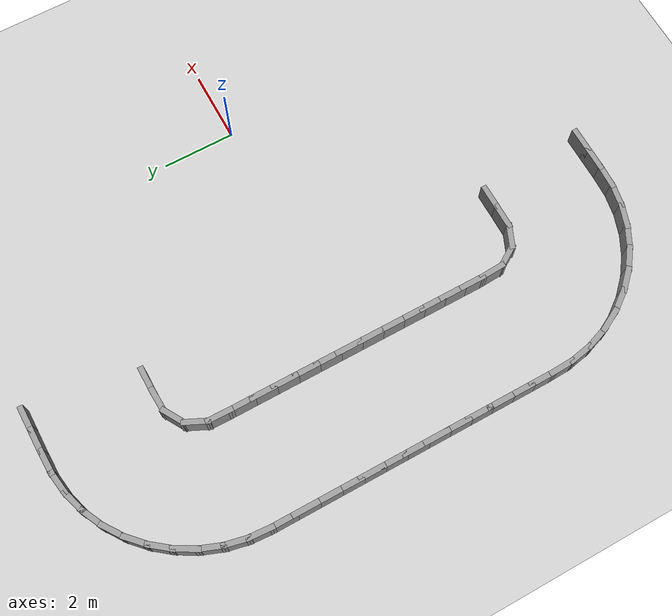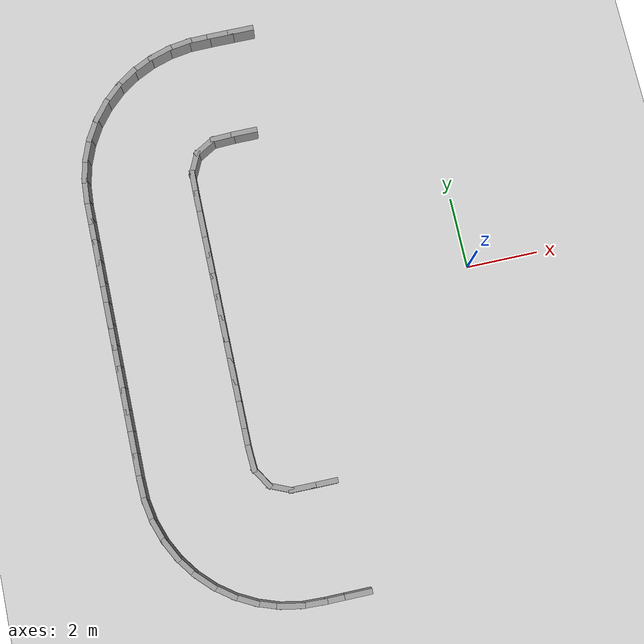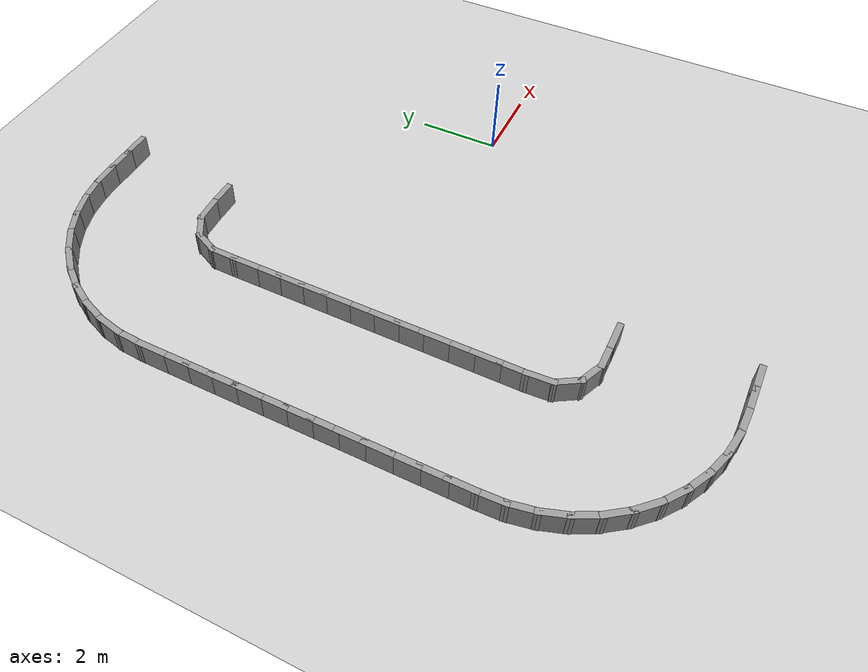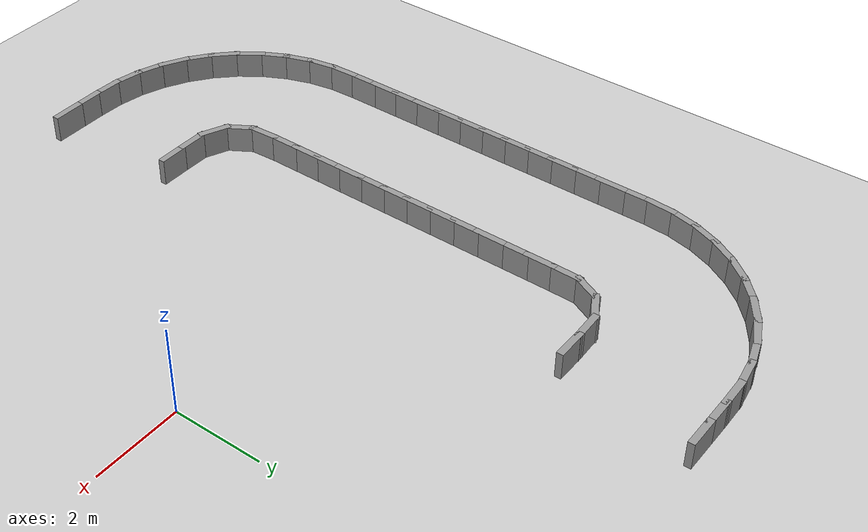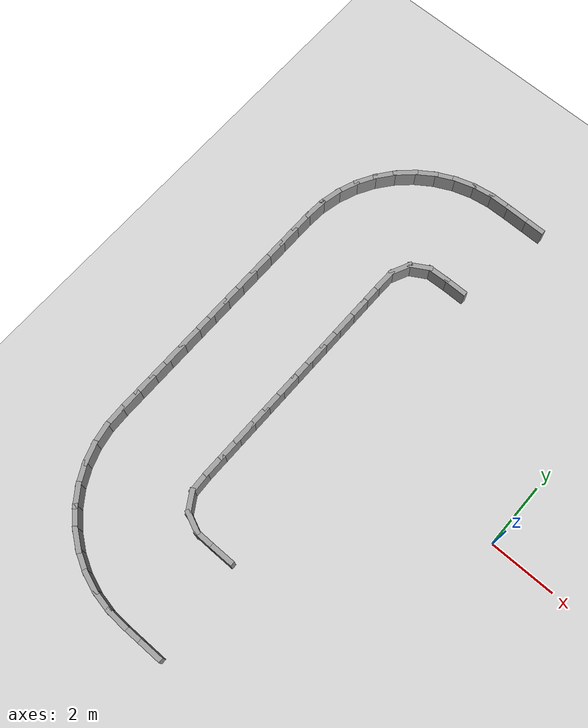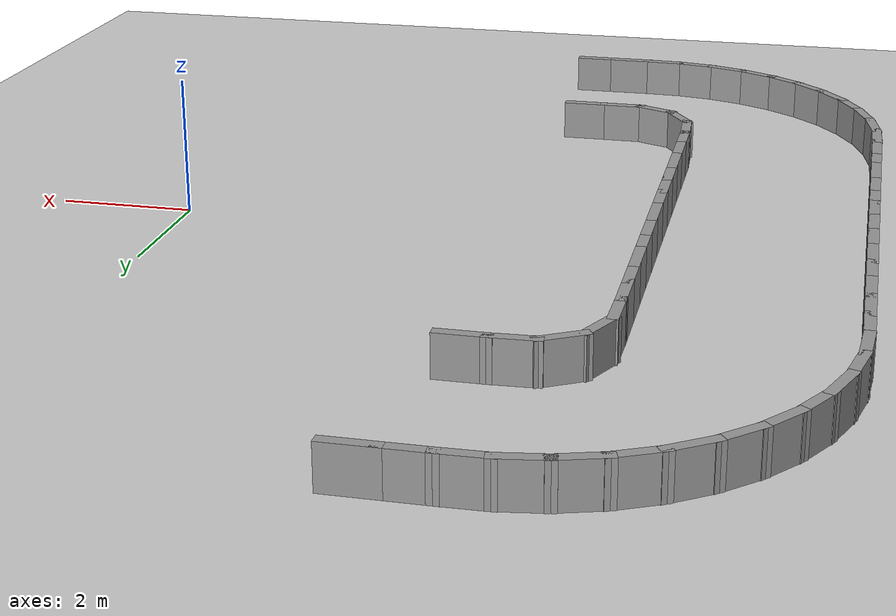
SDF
<sdf version="1.7">
 <world name="default">
  <model name="ground_plane">
   <static>1</static>
   <link name="link">
    <collision name="collision">
     <geometry><plane><normal>0 0 1</normal><size>100 100</size></plane></geometry>
     <surface><friction><ode><mu>100</mu><mu2>50</mu2></ode></friction></surface>
    </collision>
    <visual name="visual">
     <cast_shadows>0</cast_shadows>
     <geometry><plane><normal>0 0 1</normal><size>100 100</size></plane></geometry>
     <material>
      <script><uri>file://media/materials/scripts/gazebo.material</uri><name>Gazebo/Grey</name></script>
     </material>
    </visual>
   </link>
  </model>
  <model name="parking_lot_loop">
   <link name="Wall_21">
    <collision name="Wall_21_Collision">
     <geometry><box><size>0.7500 0.1500 0.6000</size></box></geometry>
     <pose>0 0 0.3000 0 -0 0</pose>
    </collision>
    <visual name="Wall_21_Visual">
     <pose>0 0 0.3000 0 -0 0</pose>
     <geometry><box><size>0.7500 0.1500 0.6000</size></box></geometry>
     <material>
      <script><uri>file://media/materials/scripts/gazebo.material</uri><name>Gazebo/Grey</name></script>
      <ambient>1 1 1 1</ambient>
     </material>
    </visual>
    <pose>-5.3292 5.0000 0 0 -0 3.14159</pose>
   </link>
   <link name="Wall_22">
    <collision name="Wall_22_Collision">
     <geometry><box><size>0.7486 0.1500 0.6000</size></box></geometry>
     <pose>0 0 0.3000 0 -0 0</pose>
    </collision>
    <visual name="Wall_22_Visual">
     <pose>0 0 0.3000 0 -0 0</pose>
     <geometry><box><size>0.7486 0.1500 0.6000</size></box></geometry>
     <material>
      <script><uri>file://media/materials/scripts/gazebo.material</uri><name>Gazebo/Grey</name></script>
      <ambient>1 1 1 1</ambient>
     </material>
    </visual>
    <pose>-5.9282 4.9869 0 0 -0 -3.09789</pose>
   </link>
   <link name="Wall_23">
    <collision name="Wall_23_Collision">
     <geometry><box><size>0.7410 0.1500 0.6000</size></box></geometry>
     <pose>0 0 0.3000 0 -0 0</pose>
    </collision>
    <visual name="Wall_23_Visual">
     <pose>0 0 0.3000 0 -0 0</pose>
     <geometry><box><size>0.7410 0.1500 0.6000</size></box></geometry>
     <material>
      <script><uri>file://media/materials/scripts/gazebo.material</uri><name>Gazebo/Grey</name></script>
      <ambient>1 1 1 1</ambient>
     </material>
    </visual>
    <pose>-6.4823 4.8247 0 0 -0 -2.61239</pose>
   </link>
   <link name="Wall_24">
    <collision name="Wall_24_Collision">
     <geometry><box><size>0.7410 0.1500 0.6000</size></box></geometry>
     <pose>0 0 0.3000 0 -0 0</pose>
    </collision>
    <visual name="Wall_24_Visual">
     <pose>0 0 0.3000 0 -0 0</pose>
     <geometry><box><size>0.7410 0.1500 0.6000</size></box></geometry>
     <material>
      <script><uri>file://media/materials/scripts/gazebo.material</uri><name>Gazebo/Grey</name></script>
      <ambient>1 1 1 1</ambient>
     </material>
    </visual>
    <pose>-6.8637 4.4083 0 0 -0 -2.01239</pose>
   </link>
   <link name="Wall_25">
    <collision name="Wall_25_Collision">
     <geometry><box><size>0.7496 0.1500 0.6000</size></box></geometry>
     <pose>0 0 0.3000 0 -0 0</pose>
    </collision>
    <visual name="Wall_25_Visual">
     <pose>0 0 0.3000 0 -0 0</pose>
     <geometry><box><size>0.7496 0.1500 0.6000</size></box></geometry>
     <material>
      <script><uri>file://media/materials/scripts/gazebo.material</uri><name>Gazebo/Grey</name></script>
      <ambient>1 1 1 1</ambient>
     </material>
    </visual>
    <pose>-6.9950 3.8414 0 0 -0 -1.58749</pose>
   </link>
   <link name="Wall_26">
    <collision name="Wall_26_Collision">
     <geometry><box><size>0.7500 0.1500 0.6000</size></box></geometry>
     <pose>0 0 0.3000 0 -0 0</pose>
    </collision>
    <visual name="Wall_26_Visual">
     <pose>0 0 0.3000 0 -0 0</pose>
     <geometry><box><size>0.7500 0.1500 0.6000</size></box></geometry>
     <material>
      <script><uri>file://media/materials/scripts/gazebo.material</uri><name>Gazebo/Grey</name></script>
      <ambient>1 1 1 1</ambient>
     </material>
    </visual>
    <pose>-7.0000 3.2416 0 0 -0 -1.57080</pose>
   </link>
   <link name="Wall_27">
    <collision name="Wall_27_Collision">
     <geometry><box><size>0.7500 0.1500 0.6000</size></box></geometry>
     <pose>0 0 0.3000 0 -0 0</pose>
    </collision>
    <visual name="Wall_27_Visual">
     <pose>0 0 0.3000 0 -0 0</pose>
     <geometry><box><size>0.7500 0.1500 0.6000</size></box></geometry>
     <material>
      <script><uri>file://media/materials/scripts/gazebo.material</uri><name>Gazebo/Grey</name></script>
      <ambient>1 1 1 1</ambient>
     </material>
    </visual>
    <pose>-7.0000 2.6416 0 0 -0 -1.57080</pose>
   </link>
   <link name="Wall_28">
    <collision name="Wall_28_Collision">
     <geometry><box><size>0.7500 0.1500 0.6000</size></box></geometry>
     <pose>0 0 0.3000 0 -0 0</pose>
    </collision>
    <visual name="Wall_28_Visual">
     <pose>0 0 0.3000 0 -0 0</pose>
     <geometry><box><size>0.7500 0.1500 0.6000</size></box></geometry>
     <material>
      <script><uri>file://media/materials/scripts/gazebo.material</uri><name>Gazebo/Grey</name></script>
      <ambient>1 1 1 1</ambient>
     </material>
    </visual>
    <pose>-7.0000 2.0416 0 0 -0 -1.57080</pose>
   </link>
   <link name="Wall_29">
    <collision name="Wall_29_Collision">
     <geometry><box><size>0.7500 0.1500 0.6000</size></box></geometry>
     <pose>0 0 0.3000 0 -0 0</pose>
    </collision>
    <visual name="Wall_29_Visual">
     <pose>0 0 0.3000 0 -0 0</pose>
     <geometry><box><size>0.7500 0.1500 0.6000</size></box></geometry>
     <material>
      <script><uri>file://media/materials/scripts/gazebo.material</uri><name>Gazebo/Grey</name></script>
      <ambient>1 1 1 1</ambient>
     </material>
    </visual>
    <pose>-7.0000 1.4416 0 0 -0 -1.57080</pose>
   </link>
   <link name="Wall_30">
    <collision name="Wall_30_Collision">
     <geometry><box><size>0.7500 0.1500 0.6000</size></box></geometry>
     <pose>0 0 0.3000 0 -0 0</pose>
    </collision>
    <visual name="Wall_30_Visual">
     <pose>0 0 0.3000 0 -0 0</pose>
     <geometry><box><size>0.7500 0.1500 0.6000</size></box></geometry>
     <material>
      <script><uri>file://media/materials/scripts/gazebo.material</uri><name>Gazebo/Grey</name></script>
      <ambient>1 1 1 1</ambient>
     </material>
    </visual>
    <pose>-7.0000 0.8416 0 0 -0 -1.57080</pose>
   </link>
   <link name="Wall_31">
    <collision name="Wall_31_Collision">
     <geometry><box><size>0.7500 0.1500 0.6000</size></box></geometry>
     <pose>0 0 0.3000 0 -0 0</pose>
    </collision>
    <visual name="Wall_31_Visual">
     <pose>0 0 0.3000 0 -0 0</pose>
     <geometry><box><size>0.7500 0.1500 0.6000</size></box></geometry>
     <material>
      <script><uri>file://media/materials/scripts/gazebo.material</uri><name>Gazebo/Grey</name></script>
      <ambient>1 1 1 1</ambient>
     </material>
    </visual>
    <pose>-7.0000 0.2416 0 0 -0 -1.57080</pose>
   </link>
   <link name="Wall_32">
    <collision name="Wall_32_Collision">
     <geometry><box><size>0.7500 0.1500 0.6000</size></box></geometry>
     <pose>0 0 0.3000 0 -0 0</pose>
    </collision>
    <visual name="Wall_32_Visual">
     <pose>0 0 0.3000 0 -0 0</pose>
     <geometry><box><size>0.7500 0.1500 0.6000</size></box></geometry>
     <material>
      <script><uri>file://media/materials/scripts/gazebo.material</uri><name>Gazebo/Grey</name></script>
      <ambient>1 1 1 1</ambient>
     </material>
    </visual>
    <pose>-7.0000 -0.3584 0 0 -0 -1.57080</pose>
   </link>
   <link name="Wall_33">
    <collision name="Wall_33_Collision">
     <geometry><box><size>0.7500 0.1500 0.6000</size></box></geometry>
     <pose>0 0 0.3000 0 -0 0</pose>
    </collision>
    <visual name="Wall_33_Visual">
     <pose>0 0 0.3000 0 -0 0</pose>
     <geometry><box><size>0.7500 0.1500 0.6000</size></box></geometry>
     <material>
      <script><uri>file://media/materials/scripts/gazebo.material</uri><name>Gazebo/Grey</name></script>
      <ambient>1 1 1 1</ambient>
     </material>
    </visual>
    <pose>-7.0000 -0.9584 0 0 -0 -1.57080</pose>
   </link>
   <link name="Wall_34">
    <collision name="Wall_34_Collision">
     <geometry><box><size>0.7500 0.1500 0.6000</size></box></geometry>
     <pose>0 0 0.3000 0 -0 0</pose>
    </collision>
    <visual name="Wall_34_Visual">
     <pose>0 0 0.3000 0 -0 0</pose>
     <geometry><box><size>0.7500 0.1500 0.6000</size></box></geometry>
     <material>
      <script><uri>file://media/materials/scripts/gazebo.material</uri><name>Gazebo/Grey</name></script>
      <ambient>1 1 1 1</ambient>
     </material>
    </visual>
    <pose>-7.0000 -1.5584 0 0 -0 -1.57080</pose>
   </link>
   <link name="Wall_35">
    <collision name="Wall_35_Collision">
     <geometry><box><size>0.7500 0.1500 0.6000</size></box></geometry>
     <pose>0 0 0.3000 0 -0 0</pose>
    </collision>
    <visual name="Wall_35_Visual">
     <pose>0 0 0.3000 0 -0 0</pose>
     <geometry><box><size>0.7500 0.1500 0.6000</size></box></geometry>
     <material>
      <script><uri>file://media/materials/scripts/gazebo.material</uri><name>Gazebo/Grey</name></script>
      <ambient>1 1 1 1</ambient>
     </material>
    </visual>
    <pose>-7.0000 -2.1584 0 0 -0 -1.57080</pose>
   </link>
   <link name="Wall_36">
    <collision name="Wall_36_Collision">
     <geometry><box><size>0.7500 0.1500 0.6000</size></box></geometry>
     <pose>0 0 0.3000 0 -0 0</pose>
    </collision>
    <visual name="Wall_36_Visual">
     <pose>0 0 0.3000 0 -0 0</pose>
     <geometry><box><size>0.7500 0.1500 0.6000</size></box></geometry>
     <material>
      <script><uri>file://media/materials/scripts/gazebo.material</uri><name>Gazebo/Grey</name></script>
      <ambient>1 1 1 1</ambient>
     </material>
    </visual>
    <pose>-7.0000 -2.7584 0 0 -0 -1.57080</pose>
   </link>
   <link name="Wall_37">
    <collision name="Wall_37_Collision">
     <geometry><box><size>0.7500 0.1500 0.6000</size></box></geometry>
     <pose>0 0 0.3000 0 -0 0</pose>
    </collision>
    <visual name="Wall_37_Visual">
     <pose>0 0 0.3000 0 -0 0</pose>
     <geometry><box><size>0.7500 0.1500 0.6000</size></box></geometry>
     <material>
      <script><uri>file://media/materials/scripts/gazebo.material</uri><name>Gazebo/Grey</name></script>
      <ambient>1 1 1 1</ambient>
     </material>
    </visual>
    <pose>-7.0000 -3.3584 0 0 -0 -1.57080</pose>
   </link>
   <link name="Wall_38">
    <collision name="Wall_38_Collision">
     <geometry><box><size>0.7481 0.1500 0.6000</size></box></geometry>
     <pose>0 0 0.3000 0 -0 0</pose>
    </collision>
    <visual name="Wall_38_Visual">
     <pose>0 0 0.3000 0 -0 0</pose>
     <geometry><box><size>0.7481 0.1500 0.6000</size></box></geometry>
     <material>
      <script><uri>file://media/materials/scripts/gazebo.material</uri><name>Gazebo/Grey</name></script>
      <ambient>1 1 1 1</ambient>
     </material>
    </visual>
    <pose>-6.9834 -3.9570 0 0 -0 -1.51525</pose>
   </link>
   <link name="Wall_39">
    <collision name="Wall_39_Collision">
     <geometry><box><size>0.7410 0.1500 0.6000</size></box></geometry>
     <pose>0 0 0.3000 0 -0 0</pose>
    </collision>
    <visual name="Wall_39_Visual">
     <pose>0 0 0.3000 0 -0 0</pose>
     <geometry><box><size>0.7410 0.1500 0.6000</size></box></geometry>
     <material>
      <script><uri>file://media/materials/scripts/gazebo.material</uri><name>Gazebo/Grey</name></script>
      <ambient>1 1 1 1</ambient>
     </material>
    </visual>
    <pose>-6.8102 -4.5062 0 0 -0 -1.01239</pose>
   </link>
   <link name="Wall_40">
    <collision name="Wall_40_Collision">
     <geometry><box><size>0.7410 0.1500 0.6000</size></box></geometry>
     <pose>0 0 0.3000 0 -0 0</pose>
    </collision>
    <visual name="Wall_40_Visual">
     <pose>0 0 0.3000 0 -0 0</pose>
     <geometry><box><size>0.7410 0.1500 0.6000</size></box></geometry>
     <material>
      <script><uri>file://media/materials/scripts/gazebo.material</uri><name>Gazebo/Grey</name></script>
      <ambient>1 1 1 1</ambient>
     </material>
    </visual>
    <pose>-6.3829 -4.8752 0 0 -0 -0.41239</pose>
   </link>
   <link name="Wall_41">
    <collision name="Wall_41_Collision">
     <geometry><box><size>0.7498 0.1500 0.6000</size></box></geometry>
     <pose>0 0 0.3000 0 -0 0</pose>
    </collision>
    <visual name="Wall_41_Visual">
     <pose>0 0 0.3000 0 -0 0</pose>
     <geometry><box><size>0.7498 0.1500 0.6000</size></box></geometry>
     <material>
      <script><uri>file://media/materials/scripts/gazebo.material</uri><name>Gazebo/Grey</name></script>
      <ambient>1 1 1 1</ambient>
     </material>
    </visual>
    <pose>-5.8123 -4.9968 0 0 -0 -0.01052</pose>
   </link>
   <link name="Wall_42">
    <collision name="Wall_42_Collision">
     <geometry><box><size>0.7500 0.1500 0.6000</size></box></geometry>
     <pose>0 0 0.3000 0 -0 0</pose>
    </collision>
    <visual name="Wall_42_Visual">
     <pose>0 0 0.3000 0 -0 0</pose>
     <geometry><box><size>0.7500 0.1500 0.6000</size></box></geometry>
     <material>
      <script><uri>file://media/materials/scripts/gazebo.material</uri><name>Gazebo/Grey</name></script>
      <ambient>1 1 1 1</ambient>
     </material>
    </visual>
    <pose>-5.2124 -5.0000 0 0 -0 0.00000</pose>
   </link>
   <link name="Wall_105">
    <collision name="Wall_105_Collision">
     <geometry><box><size>0.7500 0.1500 0.6000</size></box></geometry>
     <pose>0 0 0.3000 0 -0 0</pose>
    </collision>
    <visual name="Wall_105_Visual">
     <pose>0 0 0.3000 0 -0 0</pose>
     <geometry><box><size>0.7500 0.1500 0.6000</size></box></geometry>
     <material>
      <script><uri>file://media/materials/scripts/gazebo.material</uri><name>Gazebo/Grey</name></script>
      <ambient>1 1 1 1</ambient>
     </material>
    </visual>
    <pose>-4.8168 8.0000 0 0 -0 3.14159</pose>
   </link>
   <link name="Wall_106">
    <collision name="Wall_106_Collision">
     <geometry><box><size>0.7500 0.1500 0.6000</size></box></geometry>
     <pose>0 0 0.3000 0 -0 0</pose>
    </collision>
    <visual name="Wall_106_Visual">
     <pose>0 0 0.3000 0 -0 0</pose>
     <geometry><box><size>0.7500 0.1500 0.6000</size></box></geometry>
     <material>
      <script><uri>file://media/materials/scripts/gazebo.material</uri><name>Gazebo/Grey</name></script>
      <ambient>1 1 1 1</ambient>
     </material>
    </visual>
    <pose>-5.4168 8.0000 0 0 -0 3.14159</pose>
   </link>
   <link name="Wall_107">
    <collision name="Wall_107_Collision">
     <geometry><box><size>0.7498 0.1500 0.6000</size></box></geometry>
     <pose>0 0 0.3000 0 -0 0</pose>
    </collision>
    <visual name="Wall_107_Visual">
     <pose>0 0 0.3000 0 -0 0</pose>
     <geometry><box><size>0.7498 0.1500 0.6000</size></box></geometry>
     <material>
      <script><uri>file://media/materials/scripts/gazebo.material</uri><name>Gazebo/Grey</name></script>
      <ambient>1 1 1 1</ambient>
     </material>
    </visual>
    <pose>-6.0167 7.9937 0 0 -0 -3.12067</pose>
   </link>
   <link name="Wall_108">
    <collision name="Wall_108_Collision">
     <geometry><box><size>0.7494 0.1500 0.6000</size></box></geometry>
     <pose>0 0 0.3000 0 -0 0</pose>
    </collision>
    <visual name="Wall_108_Visual">
     <pose>0 0 0.3000 0 -0 0</pose>
     <geometry><box><size>0.7494 0.1500 0.6000</size></box></geometry>
     <material>
      <script><uri>file://media/materials/scripts/gazebo.material</uri><name>Gazebo/Grey</name></script>
      <ambient>1 1 1 1</ambient>
     </material>
    </visual>
    <pose>-6.6127 7.9414 0 0 -0 -2.98740</pose>
   </link>
   <link name="Wall_109">
    <collision name="Wall_109_Collision">
     <geometry><box><size>0.7494 0.1500 0.6000</size></box></geometry>
     <pose>0 0 0.3000 0 -0 0</pose>
    </collision>
    <visual name="Wall_109_Visual">
     <pose>0 0 0.3000 0 -0 0</pose>
     <geometry><box><size>0.7494 0.1500 0.6000</size></box></geometry>
     <material>
      <script><uri>file://media/materials/scripts/gazebo.material</uri><name>Gazebo/Grey</name></script>
      <ambient>1 1 1 1</ambient>
     </material>
    </visual>
    <pose>-7.1948 7.8056 0 0 -0 -2.83738</pose>
   </link>
   <link name="Wall_110">
    <collision name="Wall_110_Collision">
     <geometry><box><size>0.7494 0.1500 0.6000</size></box></geometry>
     <pose>0 0 0.3000 0 -0 0</pose>
    </collision>
    <visual name="Wall_110_Visual">
     <pose>0 0 0.3000 0 -0 0</pose>
     <geometry><box><size>0.7494 0.1500 0.6000</size></box></geometry>
     <material>
      <script><uri>file://media/materials/scripts/gazebo.material</uri><name>Gazebo/Grey</name></script>
      <ambient>1 1 1 1</ambient>
     </material>
    </visual>
    <pose>-7.7501 7.5843 0 0 -0 -2.68738</pose>
   </link>
   <link name="Wall_111">
    <collision name="Wall_111_Collision">
     <geometry><box><size>0.7494 0.1500 0.6000</size></box></geometry>
     <pose>0 0 0.3000 0 -0 0</pose>
    </collision>
    <visual name="Wall_111_Visual">
     <pose>0 0 0.3000 0 -0 0</pose>
     <geometry><box><size>0.7494 0.1500 0.6000</size></box></geometry>
     <material>
      <script><uri>file://media/materials/scripts/gazebo.material</uri><name>Gazebo/Grey</name></script>
      <ambient>1 1 1 1</ambient>
     </material>
    </visual>
    <pose>-8.2660 7.2826 0 0 -0 -2.53740</pose>
   </link>
   <link name="Wall_112">
    <collision name="Wall_112_Collision">
     <geometry><box><size>0.7494 0.1500 0.6000</size></box></geometry>
     <pose>0 0 0.3000 0 -0 0</pose>
    </collision>
    <visual name="Wall_112_Visual">
     <pose>0 0 0.3000 0 -0 0</pose>
     <geometry><box><size>0.7494 0.1500 0.6000</size></box></geometry>
     <material>
      <script><uri>file://media/materials/scripts/gazebo.material</uri><name>Gazebo/Grey</name></script>
      <ambient>1 1 1 1</ambient>
     </material>
    </visual>
    <pose>-8.7311 6.9071 0 0 -0 -2.38738</pose>
   </link>
   <link name="Wall_113">
    <collision name="Wall_113_Collision">
     <geometry><box><size>0.7494 0.1500 0.6000</size></box></geometry>
     <pose>0 0 0.3000 0 -0 0</pose>
    </collision>
    <visual name="Wall_113_Visual">
     <pose>0 0 0.3000 0 -0 0</pose>
     <geometry><box><size>0.7494 0.1500 0.6000</size></box></geometry>
     <material>
      <script><uri>file://media/materials/scripts/gazebo.material</uri><name>Gazebo/Grey</name></script>
      <ambient>1 1 1 1</ambient>
     </material>
    </visual>
    <pose>-9.1349 6.4663 0 0 -0 -2.23738</pose>
   </link>
   <link name="Wall_114">
    <collision name="Wall_114_Collision">
     <geometry><box><size>0.7494 0.1500 0.6000</size></box></geometry>
     <pose>0 0 0.3000 0 -0 0</pose>
    </collision>
    <visual name="Wall_114_Visual">
     <pose>0 0 0.3000 0 -0 0</pose>
     <geometry><box><size>0.7494 0.1500 0.6000</size></box></geometry>
     <material>
      <script><uri>file://media/materials/scripts/gazebo.material</uri><name>Gazebo/Grey</name></script>
      <ambient>1 1 1 1</ambient>
     </material>
    </visual>
    <pose>-9.4683 5.9701 0 0 -0 -2.08740</pose>
   </link>
   <link name="Wall_115">
    <collision name="Wall_115_Collision">
     <geometry><box><size>0.7494 0.1500 0.6000</size></box></geometry>
     <pose>0 0 0.3000 0 -0 0</pose>
    </collision>
    <visual name="Wall_115_Visual">
     <pose>0 0 0.3000 0 -0 0</pose>
     <geometry><box><size>0.7494 0.1500 0.6000</size></box></geometry>
     <material>
      <script><uri>file://media/materials/scripts/gazebo.material</uri><name>Gazebo/Grey</name></script>
      <ambient>1 1 1 1</ambient>
     </material>
    </visual>
    <pose>-9.7237 5.4297 0 0 -0 -1.93738</pose>
   </link>
   <link name="Wall_116">
    <collision name="Wall_116_Collision">
     <geometry><box><size>0.7494 0.1500 0.6000</size></box></geometry>
     <pose>0 0 0.3000 0 -0 0</pose>
    </collision>
    <visual name="Wall_116_Visual">
     <pose>0 0 0.3000 0 -0 0</pose>
     <geometry><box><size>0.7494 0.1500 0.6000</size></box></geometry>
     <material>
      <script><uri>file://media/materials/scripts/gazebo.material</uri><name>Gazebo/Grey</name></script>
      <ambient>1 1 1 1</ambient>
     </material>
    </visual>
    <pose>-9.8956 4.8572 0 0 -0 -1.78738</pose>
   </link>
   <link name="Wall_117">
    <collision name="Wall_117_Collision">
     <geometry><box><size>0.7494 0.1500 0.6000</size></box></geometry>
     <pose>0 0 0.3000 0 -0 0</pose>
    </collision>
    <visual name="Wall_117_Visual">
     <pose>0 0 0.3000 0 -0 0</pose>
     <geometry><box><size>0.7494 0.1500 0.6000</size></box></geometry>
     <material>
      <script><uri>file://media/materials/scripts/gazebo.material</uri><name>Gazebo/Grey</name></script>
      <ambient>1 1 1 1</ambient>
     </material>
    </visual>
    <pose>-9.9800 4.2654 0 0 -0 -1.63764</pose>
   </link>
   <link name="Wall_118">
    <collision name="Wall_118_Collision">
     <geometry><box><size>0.7500 0.1500 0.6000</size></box></geometry>
     <pose>0 0 0.3000 0 -0 0</pose>
    </collision>
    <visual name="Wall_118_Visual">
     <pose>0 0 0.3000 0 -0 0</pose>
     <geometry><box><size>0.7500 0.1500 0.6000</size></box></geometry>
     <material>
      <script><uri>file://media/materials/scripts/gazebo.material</uri><name>Gazebo/Grey</name></script>
      <ambient>1 1 1 1</ambient>
     </material>
    </visual>
    <pose>-10.0000 3.6664 0 0 -0 -1.57080</pose>
   </link>
   <link name="Wall_119">
    <collision name="Wall_119_Collision">
     <geometry><box><size>0.7500 0.1500 0.6000</size></box></geometry>
     <pose>0 0 0.3000 0 -0 0</pose>
    </collision>
    <visual name="Wall_119_Visual">
     <pose>0 0 0.3000 0 -0 0</pose>
     <geometry><box><size>0.7500 0.1500 0.6000</size></box></geometry>
     <material>
      <script><uri>file://media/materials/scripts/gazebo.material</uri><name>Gazebo/Grey</name></script>
      <ambient>1 1 1 1</ambient>
     </material>
    </visual>
    <pose>-10.0000 3.0664 0 0 -0 -1.57080</pose>
   </link>
   <link name="Wall_120">
    <collision name="Wall_120_Collision">
     <geometry><box><size>0.7500 0.1500 0.6000</size></box></geometry>
     <pose>0 0 0.3000 0 -0 0</pose>
    </collision>
    <visual name="Wall_120_Visual">
     <pose>0 0 0.3000 0 -0 0</pose>
     <geometry><box><size>0.7500 0.1500 0.6000</size></box></geometry>
     <material>
      <script><uri>file://media/materials/scripts/gazebo.material</uri><name>Gazebo/Grey</name></script>
      <ambient>1 1 1 1</ambient>
     </material>
    </visual>
    <pose>-10.0000 2.4664 0 0 -0 -1.57080</pose>
   </link>
   <link name="Wall_121">
    <collision name="Wall_121_Collision">
     <geometry><box><size>0.7500 0.1500 0.6000</size></box></geometry>
     <pose>0 0 0.3000 0 -0 0</pose>
    </collision>
    <visual name="Wall_121_Visual">
     <pose>0 0 0.3000 0 -0 0</pose>
     <geometry><box><size>0.7500 0.1500 0.6000</size></box></geometry>
     <material>
      <script><uri>file://media/materials/scripts/gazebo.material</uri><name>Gazebo/Grey</name></script>
      <ambient>1 1 1 1</ambient>
     </material>
    </visual>
    <pose>-10.0000 1.8664 0 0 -0 -1.57080</pose>
   </link>
   <link name="Wall_122">
    <collision name="Wall_122_Collision">
     <geometry><box><size>0.7500 0.1500 0.6000</size></box></geometry>
     <pose>0 0 0.3000 0 -0 0</pose>
    </collision>
    <visual name="Wall_122_Visual">
     <pose>0 0 0.3000 0 -0 0</pose>
     <geometry><box><size>0.7500 0.1500 0.6000</size></box></geometry>
     <material>
      <script><uri>file://media/materials/scripts/gazebo.material</uri><name>Gazebo/Grey</name></script>
      <ambient>1 1 1 1</ambient>
     </material>
    </visual>
    <pose>-10.0000 1.2664 0 0 -0 -1.57080</pose>
   </link>
   <link name="Wall_123">
    <collision name="Wall_123_Collision">
     <geometry><box><size>0.7500 0.1500 0.6000</size></box></geometry>
     <pose>0 0 0.3000 0 -0 0</pose>
    </collision>
    <visual name="Wall_123_Visual">
     <pose>0 0 0.3000 0 -0 0</pose>
     <geometry><box><size>0.7500 0.1500 0.6000</size></box></geometry>
     <material>
      <script><uri>file://media/materials/scripts/gazebo.material</uri><name>Gazebo/Grey</name></script>
      <ambient>1 1 1 1</ambient>
     </material>
    </visual>
    <pose>-10.0000 0.6664 0 0 -0 -1.57080</pose>
   </link>
   <link name="Wall_124">
    <collision name="Wall_124_Collision">
     <geometry><box><size>0.7500 0.1500 0.6000</size></box></geometry>
     <pose>0 0 0.3000 0 -0 0</pose>
    </collision>
    <visual name="Wall_124_Visual">
     <pose>0 0 0.3000 0 -0 0</pose>
     <geometry><box><size>0.7500 0.1500 0.6000</size></box></geometry>
     <material>
      <script><uri>file://media/materials/scripts/gazebo.material</uri><name>Gazebo/Grey</name></script>
      <ambient>1 1 1 1</ambient>
     </material>
    </visual>
    <pose>-10.0000 0.0664 0 0 -0 -1.57080</pose>
   </link>
   <link name="Wall_125">
    <collision name="Wall_125_Collision">
     <geometry><box><size>0.7500 0.1500 0.6000</size></box></geometry>
     <pose>0 0 0.3000 0 -0 0</pose>
    </collision>
    <visual name="Wall_125_Visual">
     <pose>0 0 0.3000 0 -0 0</pose>
     <geometry><box><size>0.7500 0.1500 0.6000</size></box></geometry>
     <material>
      <script><uri>file://media/materials/scripts/gazebo.material</uri><name>Gazebo/Grey</name></script>
      <ambient>1 1 1 1</ambient>
     </material>
    </visual>
    <pose>-10.0000 -0.5336 0 0 -0 -1.57080</pose>
   </link>
   <link name="Wall_126">
    <collision name="Wall_126_Collision">
     <geometry><box><size>0.7500 0.1500 0.6000</size></box></geometry>
     <pose>0 0 0.3000 0 -0 0</pose>
    </collision>
    <visual name="Wall_126_Visual">
     <pose>0 0 0.3000 0 -0 0</pose>
     <geometry><box><size>0.7500 0.1500 0.6000</size></box></geometry>
     <material>
      <script><uri>file://media/materials/scripts/gazebo.material</uri><name>Gazebo/Grey</name></script>
      <ambient>1 1 1 1</ambient>
     </material>
    </visual>
    <pose>-10.0000 -1.1336 0 0 -0 -1.57080</pose>
   </link>
   <link name="Wall_127">
    <collision name="Wall_127_Collision">
     <geometry><box><size>0.7500 0.1500 0.6000</size></box></geometry>
     <pose>0 0 0.3000 0 -0 0</pose>
    </collision>
    <visual name="Wall_127_Visual">
     <pose>0 0 0.3000 0 -0 0</pose>
     <geometry><box><size>0.7500 0.1500 0.6000</size></box></geometry>
     <material>
      <script><uri>file://media/materials/scripts/gazebo.material</uri><name>Gazebo/Grey</name></script>
      <ambient>1 1 1 1</ambient>
     </material>
    </visual>
    <pose>-10.0000 -1.7336 0 0 -0 -1.57080</pose>
   </link>
   <link name="Wall_128">
    <collision name="Wall_128_Collision">
     <geometry><box><size>0.7500 0.1500 0.6000</size></box></geometry>
     <pose>0 0 0.3000 0 -0 0</pose>
    </collision>
    <visual name="Wall_128_Visual">
     <pose>0 0 0.3000 0 -0 0</pose>
     <geometry><box><size>0.7500 0.1500 0.6000</size></box></geometry>
     <material>
      <script><uri>file://media/materials/scripts/gazebo.material</uri><name>Gazebo/Grey</name></script>
      <ambient>1 1 1 1</ambient>
     </material>
    </visual>
    <pose>-10.0000 -2.3336 0 0 -0 -1.57080</pose>
   </link>
   <link name="Wall_129">
    <collision name="Wall_129_Collision">
     <geometry><box><size>0.7500 0.1500 0.6000</size></box></geometry>
     <pose>0 0 0.3000 0 -0 0</pose>
    </collision>
    <visual name="Wall_129_Visual">
     <pose>0 0 0.3000 0 -0 0</pose>
     <geometry><box><size>0.7500 0.1500 0.6000</size></box></geometry>
     <material>
      <script><uri>file://media/materials/scripts/gazebo.material</uri><name>Gazebo/Grey</name></script>
      <ambient>1 1 1 1</ambient>
     </material>
    </visual>
    <pose>-10.0000 -2.9336 0 0 -0 -1.57080</pose>
   </link>
   <link name="Wall_130">
    <collision name="Wall_130_Collision">
     <geometry><box><size>0.7500 0.1500 0.6000</size></box></geometry>
     <pose>0 0 0.3000 0 -0 0</pose>
    </collision>
    <visual name="Wall_130_Visual">
     <pose>0 0 0.3000 0 -0 0</pose>
     <geometry><box><size>0.7500 0.1500 0.6000</size></box></geometry>
     <material>
      <script><uri>file://media/materials/scripts/gazebo.material</uri><name>Gazebo/Grey</name></script>
      <ambient>1 1 1 1</ambient>
     </material>
    </visual>
    <pose>-10.0000 -3.5336 0 0 -0 -1.57080</pose>
   </link>
   <link name="Wall_131">
    <collision name="Wall_131_Collision">
     <geometry><box><size>0.7496 0.1500 0.6000</size></box></geometry>
     <pose>0 0 0.3000 0 -0 0</pose>
    </collision>
    <visual name="Wall_131_Visual">
     <pose>0 0 0.3000 0 -0 0</pose>
     <geometry><box><size>0.7496 0.1500 0.6000</size></box></geometry>
     <material>
      <script><uri>file://media/materials/scripts/gazebo.material</uri><name>Gazebo/Grey</name></script>
      <ambient>1 1 1 1</ambient>
     </material>
    </visual>
    <pose>-9.9883 -4.1332 0 0 -0 -1.53162</pose>
   </link>
   <link name="Wall_132">
    <collision name="Wall_132_Collision">
     <geometry><box><size>0.7494 0.1500 0.6000</size></box></geometry>
     <pose>0 0 0.3000 0 -0 0</pose>
    </collision>
    <visual name="Wall_132_Visual">
     <pose>0 0 0.3000 0 -0 0</pose>
     <geometry><box><size>0.7494 0.1500 0.6000</size></box></geometry>
     <material>
      <script><uri>file://media/materials/scripts/gazebo.material</uri><name>Gazebo/Grey</name></script>
      <ambient>1 1 1 1</ambient>
     </material>
    </visual>
    <pose>-9.9218 -4.7275 0 0 -0 -1.38737</pose>
   </link>
   <link name="Wall_133">
    <collision name="Wall_133_Collision">
     <geometry><box><size>0.7494 0.1500 0.6000</size></box></geometry>
     <pose>0 0 0.3000 0 -0 0</pose>
    </collision>
    <visual name="Wall_133_Visual">
     <pose>0 0 0.3000 0 -0 0</pose>
     <geometry><box><size>0.7494 0.1500 0.6000</size></box></geometry>
     <material>
      <script><uri>file://media/materials/scripts/gazebo.material</uri><name>Gazebo/Grey</name></script>
      <ambient>1 1 1 1</ambient>
     </material>
    </visual>
    <pose>-9.7691 -5.3054 0 0 -0 -1.23739</pose>
   </link>
   <link name="Wall_134">
    <collision name="Wall_134_Collision">
     <geometry><box><size>0.7494 0.1500 0.6000</size></box></geometry>
     <pose>0 0 0.3000 0 -0 0</pose>
    </collision>
    <visual name="Wall_134_Visual">
     <pose>0 0 0.3000 0 -0 0</pose>
     <geometry><box><size>0.7494 0.1500 0.6000</size></box></geometry>
     <material>
      <script><uri>file://media/materials/scripts/gazebo.material</uri><name>Gazebo/Grey</name></script>
      <ambient>1 1 1 1</ambient>
     </material>
    </visual>
    <pose>-9.5317 -5.8540 0 0 -0 -1.08739</pose>
   </link>
   <link name="Wall_135">
    <collision name="Wall_135_Collision">
     <geometry><box><size>0.7494 0.1500 0.6000</size></box></geometry>
     <pose>0 0 0.3000 0 -0 0</pose>
    </collision>
    <visual name="Wall_135_Visual">
     <pose>0 0 0.3000 0 -0 0</pose>
     <geometry><box><size>0.7494 0.1500 0.6000</size></box></geometry>
     <material>
      <script><uri>file://media/materials/scripts/gazebo.material</uri><name>Gazebo/Grey</name></script>
      <ambient>1 1 1 1</ambient>
     </material>
    </visual>
    <pose>-9.2150 -6.3609 0 0 -0 -0.93737</pose>
   </link>
   <link name="Wall_136">
    <collision name="Wall_136_Collision">
     <geometry><box><size>0.7494 0.1500 0.6000</size></box></geometry>
     <pose>0 0 0.3000 0 -0 0</pose>
    </collision>
    <visual name="Wall_136_Visual">
     <pose>0 0 0.3000 0 -0 0</pose>
     <geometry><box><size>0.7494 0.1500 0.6000</size></box></geometry>
     <material>
      <script><uri>file://media/materials/scripts/gazebo.material</uri><name>Gazebo/Grey</name></script>
      <ambient>1 1 1 1</ambient>
     </material>
    </visual>
    <pose>-8.8261 -6.8149 0 0 -0 -0.78739</pose>
   </link>
   <link name="Wall_137">
    <collision name="Wall_137_Collision">
     <geometry><box><size>0.7494 0.1500 0.6000</size></box></geometry>
     <pose>0 0 0.3000 0 -0 0</pose>
    </collision>
    <visual name="Wall_137_Visual">
     <pose>0 0 0.3000 0 -0 0</pose>
     <geometry><box><size>0.7494 0.1500 0.6000</size></box></geometry>
     <material>
      <script><uri>file://media/materials/scripts/gazebo.material</uri><name>Gazebo/Grey</name></script>
      <ambient>1 1 1 1</ambient>
     </material>
    </visual>
    <pose>-8.3737 -7.2056 0 0 -0 -0.63739</pose>
   </link>
   <link name="Wall_138">
    <collision name="Wall_138_Collision">
     <geometry><box><size>0.7494 0.1500 0.6000</size></box></geometry>
     <pose>0 0 0.3000 0 -0 0</pose>
    </collision>
    <visual name="Wall_138_Visual">
     <pose>0 0 0.3000 0 -0 0</pose>
     <geometry><box><size>0.7494 0.1500 0.6000</size></box></geometry>
     <material>
      <script><uri>file://media/materials/scripts/gazebo.material</uri><name>Gazebo/Grey</name></script>
      <ambient>1 1 1 1</ambient>
     </material>
    </visual>
    <pose>-7.8680 -7.5243 0 0 -0 -0.48737</pose>
   </link>
   <link name="Wall_139">
    <collision name="Wall_139_Collision">
     <geometry><box><size>0.7494 0.1500 0.6000</size></box></geometry>
     <pose>0 0 0.3000 0 -0 0</pose>
    </collision>
    <visual name="Wall_139_Visual">
     <pose>0 0 0.3000 0 -0 0</pose>
     <geometry><box><size>0.7494 0.1500 0.6000</size></box></geometry>
     <material>
      <script><uri>file://media/materials/scripts/gazebo.material</uri><name>Gazebo/Grey</name></script>
      <ambient>1 1 1 1</ambient>
     </material>
    </visual>
    <pose>-7.3204 -7.7639 0 0 -0 -0.33739</pose>
   </link>
   <link name="Wall_140">
    <collision name="Wall_140_Collision">
     <geometry><box><size>0.7494 0.1500 0.6000</size></box></geometry>
     <pose>0 0 0.3000 0 -0 0</pose>
    </collision>
    <visual name="Wall_140_Visual">
     <pose>0 0 0.3000 0 -0 0</pose>
     <geometry><box><size>0.7494 0.1500 0.6000</size></box></geometry>
     <material>
      <script><uri>file://media/materials/scripts/gazebo.material</uri><name>Gazebo/Grey</name></script>
      <ambient>1 1 1 1</ambient>
     </material>
    </visual>
    <pose>-6.7431 -7.9189 0 0 -0 -0.18740</pose>
   </link>
   <link name="Wall_141">
    <collision name="Wall_141_Collision">
     <geometry><box><size>0.7496 0.1500 0.6000</size></box></geometry>
     <pose>0 0 0.3000 0 -0 0</pose>
    </collision>
    <visual name="Wall_141_Visual">
     <pose>0 0 0.3000 0 -0 0</pose>
     <geometry><box><size>0.7496 0.1500 0.6000</size></box></geometry>
     <material>
      <script><uri>file://media/materials/scripts/gazebo.material</uri><name>Gazebo/Grey</name></script>
      <ambient>1 1 1 1</ambient>
     </material>
    </visual>
    <pose>-6.1491 -7.9874 0 0 -0 -0.04210</pose>
   </link>
   <link name="Wall_142">
    <collision name="Wall_142_Collision">
     <geometry><box><size>0.7500 0.1500 0.6000</size></box></geometry>
     <pose>0 0 0.3000 0 -0 0</pose>
    </collision>
    <visual name="Wall_142_Visual">
     <pose>0 0 0.3000 0 -0 0</pose>
     <geometry><box><size>0.7500 0.1500 0.6000</size></box></geometry>
     <material>
      <script><uri>file://media/materials/scripts/gazebo.material</uri><name>Gazebo/Grey</name></script>
      <ambient>1 1 1 1</ambient>
     </material>
    </visual>
    <pose>-5.5495 -8.0000 0 0 -0 0.00000</pose>
   </link>
   <link name="Wall_143">
    <collision name="Wall_143_Collision">
     <geometry><box><size>0.7500 0.1500 0.6000</size></box></geometry>
     <pose>0 0 0.3000 0 -0 0</pose>
    </collision>
    <visual name="Wall_143_Visual">
     <pose>0 0 0.3000 0 -0 0</pose>
     <geometry><box><size>0.7500 0.1500 0.6000</size></box></geometry>
     <material>
      <script><uri>file://media/materials/scripts/gazebo.material</uri><name>Gazebo/Grey</name></script>
      <ambient>1 1 1 1</ambient>
     </material>
    </visual>
    <pose>-4.9495 -8.0000 0 0 -0 0.00000</pose>
   </link>
   <static>1</static>
  </model>
 </world>
</sdf>
